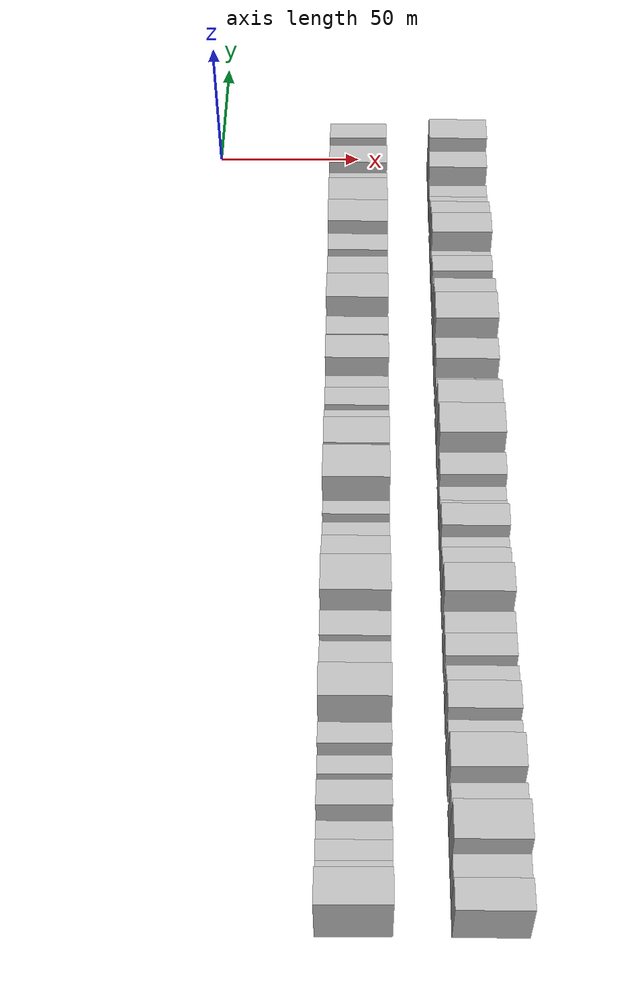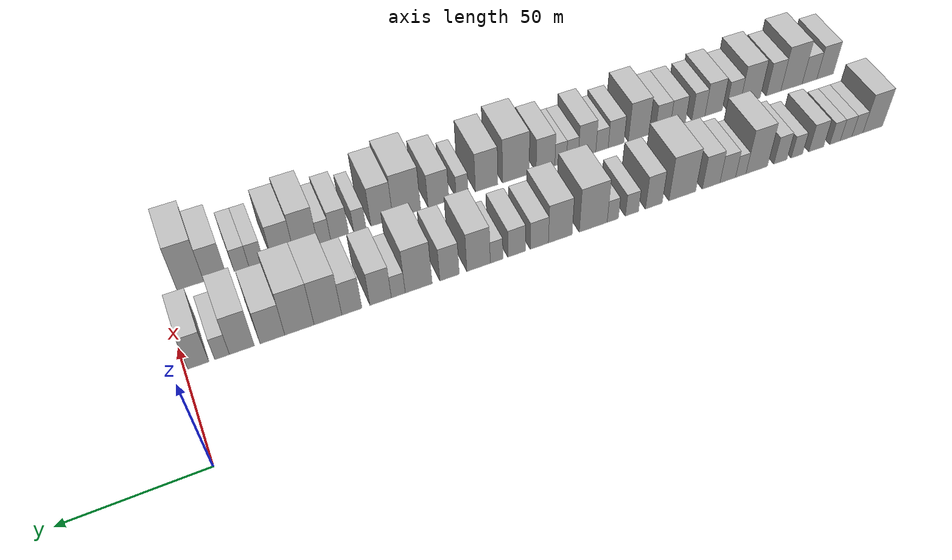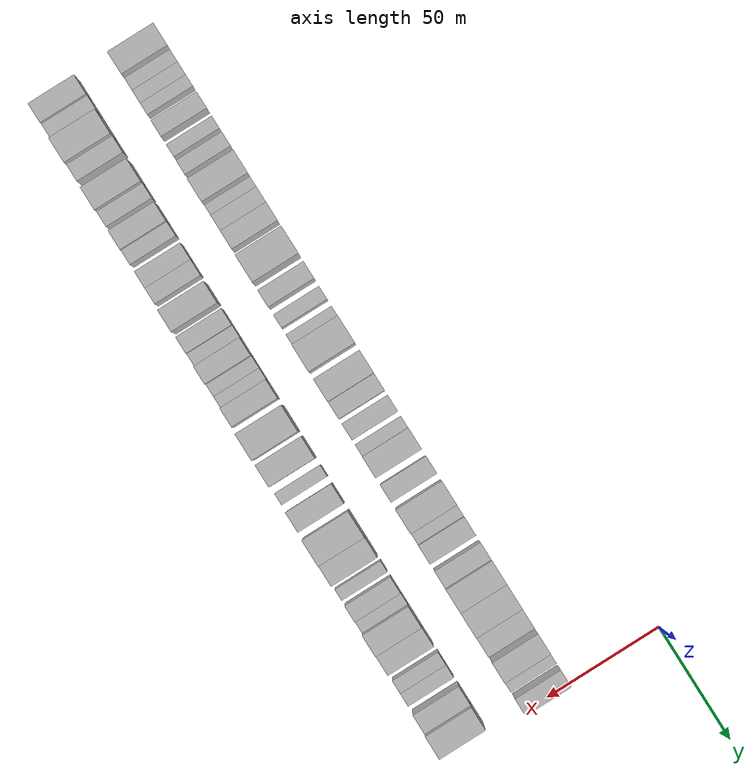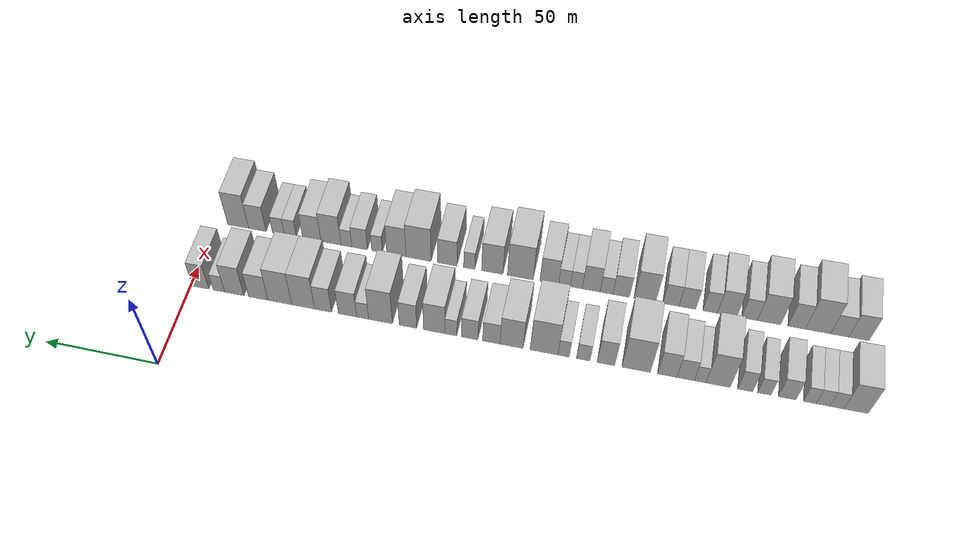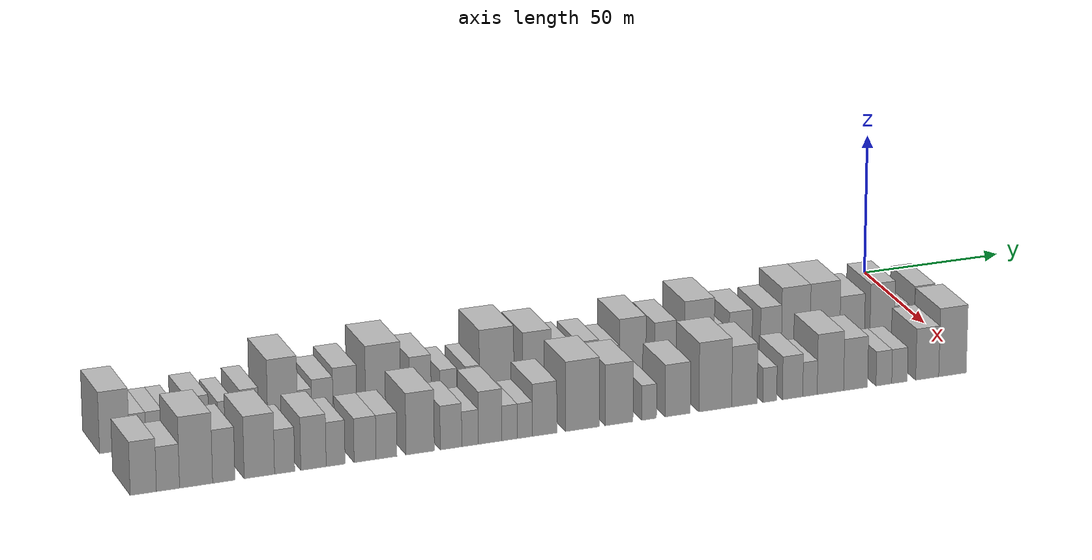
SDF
<sdf version="1.6">
 <world name="default">
  <model name="building_1">
   <static>1</static>
   <pose>50.0000 -285.1120 0 0.000000 0.000000 0.000000</pose>
   <link name="link">
    <pose>0 0 10.50 0 0 0</pose>
    <collision name="collision"><geometry><box><size>20.0000 9.7760 21.0000</size></box></geometry></collision>
    <visual name="visual">
     <cast_shadows>0</cast_shadows>
     <geometry><box><size>20.0000 9.7760 21.0000</size></box></geometry>
     <material>
      <script>
       <uri>model://HANNAS_wall/materials/scripts</uri>
       <uri>model://HANNAS_wall/materials/textures</uri>
       <name>vrc/HANNAS_wall</name>
      </script>
     </material>
    </visual>
   </link>
  </model>
  <model name="building_2">
   <static>1</static>
   <pose>50.0000 -277.5071 0 0.000000 0.000000 0.000000</pose>
   <link name="link">
    <pose>0 0 6.00 0 0 0</pose>
    <collision name="collision"><geometry><box><size>20.0000 5.4339 12.0000</size></box></geometry></collision>
    <visual name="visual">
     <cast_shadows>0</cast_shadows>
     <geometry><box><size>20.0000 5.4339 12.0000</size></box></geometry>
     <material>
      <script>
       <uri>model://HANNAS_wall/materials/scripts</uri>
       <uri>model://HANNAS_wall/materials/textures</uri>
       <name>vrc/HANNAS_wall</name>
      </script>
     </material>
    </visual>
   </link>
  </model>
  <model name="building_3">
   <static>1</static>
   <pose>50.0000 -271.9558 0 0.000000 0.000000 0.000000</pose>
   <link name="link">
    <pose>0 0 6.00 0 0 0</pose>
    <collision name="collision"><geometry><box><size>20.0000 5.6687 12.0000</size></box></geometry></collision>
    <visual name="visual">
     <cast_shadows>0</cast_shadows>
     <geometry><box><size>20.0000 5.6687 12.0000</size></box></geometry>
     <material>
      <script>
       <uri>model://HANNAS_wall/materials/scripts</uri>
       <uri>model://HANNAS_wall/materials/textures</uri>
       <name>vrc/HANNAS_wall</name>
      </script>
     </material>
    </visual>
   </link>
  </model>
  <model name="building_4">
   <static>1</static>
   <pose>50.0000 -266.5806 0 0.000000 0.000000 0.000000</pose>
   <link name="link">
    <pose>0 0 6.00 0 0 0</pose>
    <collision name="collision"><geometry><box><size>20.0000 5.0816 12.0000</size></box></geometry></collision>
    <visual name="visual">
     <cast_shadows>0</cast_shadows>
     <geometry><box><size>20.0000 5.0816 12.0000</size></box></geometry>
     <material>
      <script>
       <uri>model://HANNAS_wall/materials/scripts</uri>
       <uri>model://HANNAS_wall/materials/textures</uri>
       <name>vrc/HANNAS_wall</name>
      </script>
     </material>
    </visual>
   </link>
  </model>
  <model name="building_5">
   <static>1</static>
   <pose>50.0000 -257.4711 0 0.000000 0.000000 0.000000</pose>
   <link name="link">
    <pose>0 0 7.50 0 0 0</pose>
    <collision name="collision"><geometry><box><size>20.0000 7.1374 15.0000</size></box></geometry></collision>
    <visual name="visual">
     <cast_shadows>0</cast_shadows>
     <geometry><box><size>20.0000 7.1374 15.0000</size></box></geometry>
     <material>
      <script>
       <uri>model://HANNAS_wall/materials/scripts</uri>
       <uri>model://HANNAS_wall/materials/textures</uri>
       <name>vrc/HANNAS_wall</name>
      </script>
     </material>
    </visual>
   </link>
  </model>
  <model name="building_6">
   <static>1</static>
   <pose>50.0000 -248.1935 0 0.000000 0.000000 0.000000</pose>
   <link name="link">
    <pose>0 0 6.00 0 0 0</pose>
    <collision name="collision"><geometry><box><size>20.0000 5.4177 12.0000</size></box></geometry></collision>
    <visual name="visual">
     <cast_shadows>0</cast_shadows>
     <geometry><box><size>20.0000 5.4177 12.0000</size></box></geometry>
     <material>
      <script>
       <uri>model://HANNAS_wall/materials/scripts</uri>
       <uri>model://HANNAS_wall/materials/textures</uri>
       <name>vrc/HANNAS_wall</name>
      </script>
     </material>
    </visual>
   </link>
  </model>
  <model name="building_7">
   <static>1</static>
   <pose>50.0000 -240.3888 0 0.000000 0.000000 0.000000</pose>
   <link name="link">
    <pose>0 0 7.50 0 0 0</pose>
    <collision name="collision"><geometry><box><size>20.0000 6.1917 15.0000</size></box></geometry></collision>
    <visual name="visual">
     <cast_shadows>0</cast_shadows>
     <geometry><box><size>20.0000 6.1917 15.0000</size></box></geometry>
     <material>
      <script>
       <uri>model://HANNAS_wall/materials/scripts</uri>
       <uri>model://HANNAS_wall/materials/textures</uri>
       <name>vrc/HANNAS_wall</name>
      </script>
     </material>
    </visual>
   </link>
  </model>
  <model name="building_8">
   <static>1</static>
   <pose>50.0000 -229.2782 0 0.000000 0.000000 0.000000</pose>
   <link name="link">
    <pose>0 0 12.00 0 0 0</pose>
    <collision name="collision"><geometry><box><size>20.0000 10.0295 24.0000</size></box></geometry></collision>
    <visual name="visual">
     <cast_shadows>0</cast_shadows>
     <geometry><box><size>20.0000 10.0295 24.0000</size></box></geometry>
     <material>
      <script>
       <uri>model://HANNAS_wall/materials/scripts</uri>
       <uri>model://HANNAS_wall/materials/textures</uri>
       <name>vrc/HANNAS_wall</name>
      </script>
     </material>
    </visual>
   </link>
  </model>
  <model name="building_9">
   <static>1</static>
   <pose>50.0000 -221.8619 0 0.000000 0.000000 0.000000</pose>
   <link name="link">
    <pose>0 0 6.00 0 0 0</pose>
    <collision name="collision"><geometry><box><size>20.0000 4.8031 12.0000</size></box></geometry></collision>
    <visual name="visual">
     <cast_shadows>0</cast_shadows>
     <geometry><box><size>20.0000 4.8031 12.0000</size></box></geometry>
     <material>
      <script>
       <uri>model://HANNAS_wall/materials/scripts</uri>
       <uri>model://HANNAS_wall/materials/textures</uri>
       <name>vrc/HANNAS_wall</name>
      </script>
     </material>
    </visual>
   </link>
  </model>
  <model name="building_10">
   <static>1</static>
   <pose>50.0000 -215.8952 0 0.000000 0.000000 0.000000</pose>
   <link name="link">
    <pose>0 0 7.50 0 0 0</pose>
    <collision name="collision"><geometry><box><size>20.0000 7.1303 15.0000</size></box></geometry></collision>
    <visual name="visual">
     <cast_shadows>0</cast_shadows>
     <geometry><box><size>20.0000 7.1303 15.0000</size></box></geometry>
     <material>
      <script>
       <uri>model://HANNAS_wall/materials/scripts</uri>
       <uri>model://HANNAS_wall/materials/textures</uri>
       <name>vrc/HANNAS_wall</name>
      </script>
     </material>
    </visual>
   </link>
  </model>
  <model name="building_11">
   <static>1</static>
   <pose>50.0000 -208.3182 0 0.000000 0.000000 0.000000</pose>
   <link name="link">
    <pose>0 0 9.00 0 0 0</pose>
    <collision name="collision"><geometry><box><size>20.0000 8.0237 18.0000</size></box></geometry></collision>
    <visual name="visual">
     <cast_shadows>0</cast_shadows>
     <geometry><box><size>20.0000 8.0237 18.0000</size></box></geometry>
     <material>
      <script>
       <uri>model://HANNAS_wall/materials/scripts</uri>
       <uri>model://HANNAS_wall/materials/textures</uri>
       <name>vrc/HANNAS_wall</name>
      </script>
     </material>
    </visual>
   </link>
  </model>
  <model name="building_12">
   <static>1</static>
   <pose>50.0000 -195.3525 0 0.000000 0.000000 0.000000</pose>
   <link name="link">
    <pose>0 0 12.00 0 0 0</pose>
    <collision name="collision"><geometry><box><size>20.0000 11.9077 24.0000</size></box></geometry></collision>
    <visual name="visual">
     <cast_shadows>0</cast_shadows>
     <geometry><box><size>20.0000 11.9077 24.0000</size></box></geometry>
     <material>
      <script>
       <uri>model://HANNAS_wall/materials/scripts</uri>
       <uri>model://HANNAS_wall/materials/textures</uri>
       <name>vrc/HANNAS_wall</name>
      </script>
     </material>
    </visual>
   </link>
  </model>
  <model name="building_13">
   <static>1</static>
   <pose>50.0000 -182.7060 0 0.000000 0.000000 0.000000</pose>
   <link name="link">
    <pose>0 0 9.00 0 0 0</pose>
    <collision name="collision"><geometry><box><size>20.0000 7.3852 18.0000</size></box></geometry></collision>
    <visual name="visual">
     <cast_shadows>0</cast_shadows>
     <geometry><box><size>20.0000 7.3852 18.0000</size></box></geometry>
     <material>
      <script>
       <uri>model://HANNAS_wall/materials/scripts</uri>
       <uri>model://HANNAS_wall/materials/textures</uri>
       <name>vrc/HANNAS_wall</name>
      </script>
     </material>
    </visual>
   </link>
  </model>
  <model name="building_14">
   <static>1</static>
   <pose>50.0000 -173.1406 0 0.000000 0.000000 0.000000</pose>
   <link name="link">
    <pose>0 0 6.00 0 0 0</pose>
    <collision name="collision"><geometry><box><size>20.0000 5.7456 12.0000</size></box></geometry></collision>
    <visual name="visual">
     <cast_shadows>0</cast_shadows>
     <geometry><box><size>20.0000 5.7456 12.0000</size></box></geometry>
     <material>
      <script>
       <uri>model://HANNAS_wall/materials/scripts</uri>
       <uri>model://HANNAS_wall/materials/textures</uri>
       <name>vrc/HANNAS_wall</name>
      </script>
     </material>
    </visual>
   </link>
  </model>
  <model name="building_15">
   <static>1</static>
   <pose>50.0000 -164.8532 0 0.000000 0.000000 0.000000</pose>
   <link name="link">
    <pose>0 0 6.00 0 0 0</pose>
    <collision name="collision"><geometry><box><size>20.0000 4.8292 12.0000</size></box></geometry></collision>
    <visual name="visual">
     <cast_shadows>0</cast_shadows>
     <geometry><box><size>20.0000 4.8292 12.0000</size></box></geometry>
     <material>
      <script>
       <uri>model://HANNAS_wall/materials/scripts</uri>
       <uri>model://HANNAS_wall/materials/textures</uri>
       <name>vrc/HANNAS_wall</name>
      </script>
     </material>
    </visual>
   </link>
  </model>
  <model name="building_16">
   <static>1</static>
   <pose>50.0000 -156.5043 0 0.000000 0.000000 0.000000</pose>
   <link name="link">
    <pose>0 0 12.00 0 0 0</pose>
    <collision name="collision"><geometry><box><size>20.0000 11.8687 24.0000</size></box></geometry></collision>
    <visual name="visual">
     <cast_shadows>0</cast_shadows>
     <geometry><box><size>20.0000 11.8687 24.0000</size></box></geometry>
     <material>
      <script>
       <uri>model://HANNAS_wall/materials/scripts</uri>
       <uri>model://HANNAS_wall/materials/textures</uri>
       <name>vrc/HANNAS_wall</name>
      </script>
     </material>
    </visual>
   </link>
  </model>
  <model name="building_17">
   <static>1</static>
   <pose>50.0000 -142.6016 0 0.000000 0.000000 0.000000</pose>
   <link name="link">
    <pose>0 0 10.50 0 0 0</pose>
    <collision name="collision"><geometry><box><size>20.0000 9.9367 21.0000</size></box></geometry></collision>
    <visual name="visual">
     <cast_shadows>0</cast_shadows>
     <geometry><box><size>20.0000 9.9367 21.0000</size></box></geometry>
     <material>
      <script>
       <uri>model://HANNAS_wall/materials/scripts</uri>
       <uri>model://HANNAS_wall/materials/textures</uri>
       <name>vrc/HANNAS_wall</name>
      </script>
     </material>
    </visual>
   </link>
  </model>
  <model name="building_18">
   <static>1</static>
   <pose>50.0000 -133.8957 0 0.000000 0.000000 0.000000</pose>
   <link name="link">
    <pose>0 0 7.50 0 0 0</pose>
    <collision name="collision"><geometry><box><size>20.0000 7.4753 15.0000</size></box></geometry></collision>
    <visual name="visual">
     <cast_shadows>0</cast_shadows>
     <geometry><box><size>20.0000 7.4753 15.0000</size></box></geometry>
     <material>
      <script>
       <uri>model://HANNAS_wall/materials/scripts</uri>
       <uri>model://HANNAS_wall/materials/textures</uri>
       <name>vrc/HANNAS_wall</name>
      </script>
     </material>
    </visual>
   </link>
  </model>
  <model name="building_19">
   <static>1</static>
   <pose>50.0000 -124.5786 0 0.000000 0.000000 0.000000</pose>
   <link name="link">
    <pose>0 0 7.50 0 0 0</pose>
    <collision name="collision"><geometry><box><size>20.0000 7.1588 15.0000</size></box></geometry></collision>
    <visual name="visual">
     <cast_shadows>0</cast_shadows>
     <geometry><box><size>20.0000 7.1588 15.0000</size></box></geometry>
     <material>
      <script>
       <uri>model://HANNAS_wall/materials/scripts</uri>
       <uri>model://HANNAS_wall/materials/textures</uri>
       <name>vrc/HANNAS_wall</name>
      </script>
     </material>
    </visual>
   </link>
  </model>
  <model name="building_20">
   <static>1</static>
   <pose>50.0000 -116.4364 0 0.000000 0.000000 0.000000</pose>
   <link name="link">
    <pose>0 0 6.00 0 0 0</pose>
    <collision name="collision"><geometry><box><size>20.0000 5.1256 12.0000</size></box></geometry></collision>
    <visual name="visual">
     <cast_shadows>0</cast_shadows>
     <geometry><box><size>20.0000 5.1256 12.0000</size></box></geometry>
     <material>
      <script>
       <uri>model://HANNAS_wall/materials/scripts</uri>
       <uri>model://HANNAS_wall/materials/textures</uri>
       <name>vrc/HANNAS_wall</name>
      </script>
     </material>
    </visual>
   </link>
  </model>
  <model name="building_21">
   <static>1</static>
   <pose>50.0000 -109.1914 0 0.000000 0.000000 0.000000</pose>
   <link name="link">
    <pose>0 0 10.50 0 0 0</pose>
    <collision name="collision"><geometry><box><size>20.0000 9.3645 21.0000</size></box></geometry></collision>
    <visual name="visual">
     <cast_shadows>0</cast_shadows>
     <geometry><box><size>20.0000 9.3645 21.0000</size></box></geometry>
     <material>
      <script>
       <uri>model://HANNAS_wall/materials/scripts</uri>
       <uri>model://HANNAS_wall/materials/textures</uri>
       <name>vrc/HANNAS_wall</name>
      </script>
     </material>
    </visual>
   </link>
  </model>
  <model name="building_22">
   <static>1</static>
   <pose>50.0000 -97.6851 0 0.000000 0.000000 0.000000</pose>
   <link name="link">
    <pose>0 0 9.00 0 0 0</pose>
    <collision name="collision"><geometry><box><size>20.0000 7.6480 18.0000</size></box></geometry></collision>
    <visual name="visual">
     <cast_shadows>0</cast_shadows>
     <geometry><box><size>20.0000 7.6480 18.0000</size></box></geometry>
     <material>
      <script>
       <uri>model://HANNAS_wall/materials/scripts</uri>
       <uri>model://HANNAS_wall/materials/textures</uri>
       <name>vrc/HANNAS_wall</name>
      </script>
     </material>
    </visual>
   </link>
  </model>
  <model name="building_23">
   <static>1</static>
   <pose>50.0000 -85.6363 0 0.000000 0.000000 0.000000</pose>
   <link name="link">
    <pose>0 0 12.00 0 0 0</pose>
    <collision name="collision"><geometry><box><size>20.0000 10.4497 24.0000</size></box></geometry></collision>
    <visual name="visual">
     <cast_shadows>0</cast_shadows>
     <geometry><box><size>20.0000 10.4497 24.0000</size></box></geometry>
     <material>
      <script>
       <uri>model://HANNAS_wall/materials/scripts</uri>
       <uri>model://HANNAS_wall/materials/textures</uri>
       <name>vrc/HANNAS_wall</name>
      </script>
     </material>
    </visual>
   </link>
  </model>
  <model name="building_24">
   <static>1</static>
   <pose>50.0000 -77.7396 0 0.000000 0.000000 0.000000</pose>
   <link name="link">
    <pose>0 0 6.00 0 0 0</pose>
    <collision name="collision"><geometry><box><size>20.0000 5.3436 12.0000</size></box></geometry></collision>
    <visual name="visual">
     <cast_shadows>0</cast_shadows>
     <geometry><box><size>20.0000 5.3436 12.0000</size></box></geometry>
     <material>
      <script>
       <uri>model://HANNAS_wall/materials/scripts</uri>
       <uri>model://HANNAS_wall/materials/textures</uri>
       <name>vrc/HANNAS_wall</name>
      </script>
     </material>
    </visual>
   </link>
  </model>
  <model name="building_25">
   <static>1</static>
   <pose>50.0000 -70.9836 0 0.000000 0.000000 0.000000</pose>
   <link name="link">
    <pose>0 0 9.00 0 0 0</pose>
    <collision name="collision"><geometry><box><size>20.0000 8.1685 18.0000</size></box></geometry></collision>
    <visual name="visual">
     <cast_shadows>0</cast_shadows>
     <geometry><box><size>20.0000 8.1685 18.0000</size></box></geometry>
     <material>
      <script>
       <uri>model://HANNAS_wall/materials/scripts</uri>
       <uri>model://HANNAS_wall/materials/textures</uri>
       <name>vrc/HANNAS_wall</name>
      </script>
     </material>
    </visual>
   </link>
  </model>
  <model name="building_26">
   <static>1</static>
   <pose>50.0000 -60.1290 0 0.000000 0.000000 0.000000</pose>
   <link name="link">
    <pose>0 0 9.00 0 0 0</pose>
    <collision name="collision"><geometry><box><size>20.0000 7.5406 18.0000</size></box></geometry></collision>
    <visual name="visual">
     <cast_shadows>0</cast_shadows>
     <geometry><box><size>20.0000 7.5406 18.0000</size></box></geometry>
     <material>
      <script>
       <uri>model://HANNAS_wall/materials/scripts</uri>
       <uri>model://HANNAS_wall/materials/textures</uri>
       <name>vrc/HANNAS_wall</name>
      </script>
     </material>
    </visual>
   </link>
  </model>
  <model name="building_27">
   <static>1</static>
   <pose>50.0000 -51.2133 0 0.000000 0.000000 0.000000</pose>
   <link name="link">
    <pose>0 0 12.00 0 0 0</pose>
    <collision name="collision"><geometry><box><size>20.0000 10.2908 24.0000</size></box></geometry></collision>
    <visual name="visual">
     <cast_shadows>0</cast_shadows>
     <geometry><box><size>20.0000 10.2908 24.0000</size></box></geometry>
     <material>
      <script>
       <uri>model://HANNAS_wall/materials/scripts</uri>
       <uri>model://HANNAS_wall/materials/textures</uri>
       <name>vrc/HANNAS_wall</name>
      </script>
     </material>
    </visual>
   </link>
  </model>
  <model name="building_28">
   <static>1</static>
   <pose>50.0000 -40.7149 0 0.000000 0.000000 0.000000</pose>
   <link name="link">
    <pose>0 0 12.00 0 0 0</pose>
    <collision name="collision"><geometry><box><size>20.0000 10.7061 24.0000</size></box></geometry></collision>
    <visual name="visual">
     <cast_shadows>0</cast_shadows>
     <geometry><box><size>20.0000 10.7061 24.0000</size></box></geometry>
     <material>
      <script>
       <uri>model://HANNAS_wall/materials/scripts</uri>
       <uri>model://HANNAS_wall/materials/textures</uri>
       <name>vrc/HANNAS_wall</name>
      </script>
     </material>
    </visual>
   </link>
  </model>
  <model name="building_29">
   <static>1</static>
   <pose>50.0000 -30.9056 0 0.000000 0.000000 0.000000</pose>
   <link name="link">
    <pose>0 0 9.00 0 0 0</pose>
    <collision name="collision"><geometry><box><size>20.0000 8.9124 18.0000</size></box></geometry></collision>
    <visual name="visual">
     <cast_shadows>0</cast_shadows>
     <geometry><box><size>20.0000 8.9124 18.0000</size></box></geometry>
     <material>
      <script>
       <uri>model://HANNAS_wall/materials/scripts</uri>
       <uri>model://HANNAS_wall/materials/textures</uri>
       <name>vrc/HANNAS_wall</name>
      </script>
     </material>
    </visual>
   </link>
  </model>
  <model name="building_30">
   <static>1</static>
   <pose>50.0000 -20.0136 0 0.000000 0.000000 0.000000</pose>
   <link name="link">
    <pose>0 0 10.50 0 0 0</pose>
    <collision name="collision"><geometry><box><size>20.0000 8.8717 21.0000</size></box></geometry></collision>
    <visual name="visual">
     <cast_shadows>0</cast_shadows>
     <geometry><box><size>20.0000 8.8717 21.0000</size></box></geometry>
     <material>
      <script>
       <uri>model://HANNAS_wall/materials/scripts</uri>
       <uri>model://HANNAS_wall/materials/textures</uri>
       <name>vrc/HANNAS_wall</name>
      </script>
     </material>
    </visual>
   </link>
  </model>
  <model name="building_31">
   <static>1</static>
   <pose>50.0000 -12.9864 0 0.000000 0.000000 0.000000</pose>
   <link name="link">
    <pose>0 0 6.00 0 0 0</pose>
    <collision name="collision"><geometry><box><size>20.0000 5.1826 12.0000</size></box></geometry></collision>
    <visual name="visual">
     <cast_shadows>0</cast_shadows>
     <geometry><box><size>20.0000 5.1826 12.0000</size></box></geometry>
     <material>
      <script>
       <uri>model://HANNAS_wall/materials/scripts</uri>
       <uri>model://HANNAS_wall/materials/textures</uri>
       <name>vrc/HANNAS_wall</name>
      </script>
     </material>
    </visual>
   </link>
  </model>
  <model name="building_32">
   <static>1</static>
   <pose>50.0000 -4.6984 0 0.000000 0.000000 0.000000</pose>
   <link name="link">
    <pose>0 0 9.00 0 0 0</pose>
    <collision name="collision"><geometry><box><size>20.0000 7.3933 18.0000</size></box></geometry></collision>
    <visual name="visual">
     <cast_shadows>0</cast_shadows>
     <geometry><box><size>20.0000 7.3933 18.0000</size></box></geometry>
     <material>
      <script>
       <uri>model://HANNAS_wall/materials/scripts</uri>
       <uri>model://HANNAS_wall/materials/textures</uri>
       <name>vrc/HANNAS_wall</name>
      </script>
     </material>
    </visual>
   </link>
  </model>
  <model name="building_62">
   <static>1</static>
   <pose>85.0000 -285.7723 0 0.000000 0.000000 0.000000</pose>
   <link name="link">
    <pose>0 0 9.00 0 0 0</pose>
    <collision name="collision"><geometry><box><size>20.0000 8.4553 18.0000</size></box></geometry></collision>
    <visual name="visual">
     <cast_shadows>0</cast_shadows>
     <geometry><box><size>20.0000 8.4553 18.0000</size></box></geometry>
     <material>
      <script>
       <uri>model://HANNAS_wall/materials/scripts</uri>
       <uri>model://HANNAS_wall/materials/textures</uri>
       <name>vrc/HANNAS_wall</name>
      </script>
     </material>
    </visual>
   </link>
  </model>
  <model name="building_63">
   <static>1</static>
   <pose>85.0000 -277.8021 0 0.000000 0.000000 0.000000</pose>
   <link name="link">
    <pose>0 0 7.50 0 0 0</pose>
    <collision name="collision"><geometry><box><size>20.0000 7.4852 15.0000</size></box></geometry></collision>
    <visual name="visual">
     <cast_shadows>0</cast_shadows>
     <geometry><box><size>20.0000 7.4852 15.0000</size></box></geometry>
     <material>
      <script>
       <uri>model://HANNAS_wall/materials/scripts</uri>
       <uri>model://HANNAS_wall/materials/textures</uri>
       <name>vrc/HANNAS_wall</name>
      </script>
     </material>
    </visual>
   </link>
  </model>
  <model name="building_64">
   <static>1</static>
   <pose>85.0000 -268.6923 0 0.000000 0.000000 0.000000</pose>
   <link name="link">
    <pose>0 0 12.00 0 0 0</pose>
    <collision name="collision"><geometry><box><size>20.0000 10.7342 24.0000</size></box></geometry></collision>
    <visual name="visual">
     <cast_shadows>0</cast_shadows>
     <geometry><box><size>20.0000 10.7342 24.0000</size></box></geometry>
     <material>
      <script>
       <uri>model://HANNAS_wall/materials/scripts</uri>
       <uri>model://HANNAS_wall/materials/textures</uri>
       <name>vrc/HANNAS_wall</name>
      </script>
     </material>
    </visual>
   </link>
  </model>
  <model name="building_65">
   <static>1</static>
   <pose>85.0000 -259.6766 0 0.000000 0.000000 0.000000</pose>
   <link name="link">
    <pose>0 0 9.00 0 0 0</pose>
    <collision name="collision"><geometry><box><size>20.0000 7.2972 18.0000</size></box></geometry></collision>
    <visual name="visual">
     <cast_shadows>0</cast_shadows>
     <geometry><box><size>20.0000 7.2972 18.0000</size></box></geometry>
     <material>
      <script>
       <uri>model://HANNAS_wall/materials/scripts</uri>
       <uri>model://HANNAS_wall/materials/textures</uri>
       <name>vrc/HANNAS_wall</name>
      </script>
     </material>
    </visual>
   </link>
  </model>
  <model name="building_66">
   <static>1</static>
   <pose>85.0000 -248.0553 0 0.000000 0.000000 0.000000</pose>
   <link name="link">
    <pose>0 0 10.50 0 0 0</pose>
    <collision name="collision"><geometry><box><size>20.0000 9.9454 21.0000</size></box></geometry></collision>
    <visual name="visual">
     <cast_shadows>0</cast_shadows>
     <geometry><box><size>20.0000 9.9454 21.0000</size></box></geometry>
     <material>
      <script>
       <uri>model://HANNAS_wall/materials/scripts</uri>
       <uri>model://HANNAS_wall/materials/textures</uri>
       <name>vrc/HANNAS_wall</name>
      </script>
     </material>
    </visual>
   </link>
  </model>
  <model name="building_67">
   <static>1</static>
   <pose>85.0000 -239.7674 0 0.000000 0.000000 0.000000</pose>
   <link name="link">
    <pose>0 0 7.50 0 0 0</pose>
    <collision name="collision"><geometry><box><size>20.0000 6.6302 15.0000</size></box></geometry></collision>
    <visual name="visual">
     <cast_shadows>0</cast_shadows>
     <geometry><box><size>20.0000 6.6302 15.0000</size></box></geometry>
     <material>
      <script>
       <uri>model://HANNAS_wall/materials/scripts</uri>
       <uri>model://HANNAS_wall/materials/textures</uri>
       <name>vrc/HANNAS_wall</name>
      </script>
     </material>
    </visual>
   </link>
  </model>
  <model name="building_68">
   <static>1</static>
   <pose>85.0000 -230.2664 0 0.000000 0.000000 0.000000</pose>
   <link name="link">
    <pose>0 0 9.00 0 0 0</pose>
    <collision name="collision"><geometry><box><size>20.0000 8.3719 18.0000</size></box></geometry></collision>
    <visual name="visual">
     <cast_shadows>0</cast_shadows>
     <geometry><box><size>20.0000 8.3719 18.0000</size></box></geometry>
     <material>
      <script>
       <uri>model://HANNAS_wall/materials/scripts</uri>
       <uri>model://HANNAS_wall/materials/textures</uri>
       <name>vrc/HANNAS_wall</name>
      </script>
     </material>
    </visual>
   </link>
  </model>
  <model name="building_69">
   <static>1</static>
   <pose>85.0000 -222.9551 0 0.000000 0.000000 0.000000</pose>
   <link name="link">
    <pose>0 0 7.50 0 0 0</pose>
    <collision name="collision"><geometry><box><size>20.0000 6.2507 15.0000</size></box></geometry></collision>
    <visual name="visual">
     <cast_shadows>0</cast_shadows>
     <geometry><box><size>20.0000 6.2507 15.0000</size></box></geometry>
     <material>
      <script>
       <uri>model://HANNAS_wall/materials/scripts</uri>
       <uri>model://HANNAS_wall/materials/textures</uri>
       <name>vrc/HANNAS_wall</name>
      </script>
     </material>
    </visual>
   </link>
  </model>
  <model name="building_70">
   <static>1</static>
   <pose>85.0000 -213.1836 0 0.000000 0.000000 0.000000</pose>
   <link name="link">
    <pose>0 0 7.50 0 0 0</pose>
    <collision name="collision"><geometry><box><size>20.0000 7.2921 15.0000</size></box></geometry></collision>
    <visual name="visual">
     <cast_shadows>0</cast_shadows>
     <geometry><box><size>20.0000 7.2921 15.0000</size></box></geometry>
     <material>
      <script>
       <uri>model://HANNAS_wall/materials/scripts</uri>
       <uri>model://HANNAS_wall/materials/textures</uri>
       <name>vrc/HANNAS_wall</name>
      </script>
     </material>
    </visual>
   </link>
  </model>
  <model name="building_71">
   <static>1</static>
   <pose>85.0000 -206.0571 0 0.000000 0.000000 0.000000</pose>
   <link name="link">
    <pose>0 0 7.50 0 0 0</pose>
    <collision name="collision"><geometry><box><size>20.0000 6.9610 15.0000</size></box></geometry></collision>
    <visual name="visual">
     <cast_shadows>0</cast_shadows>
     <geometry><box><size>20.0000 6.9610 15.0000</size></box></geometry>
     <material>
      <script>
       <uri>model://HANNAS_wall/materials/scripts</uri>
       <uri>model://HANNAS_wall/materials/textures</uri>
       <name>vrc/HANNAS_wall</name>
      </script>
     </material>
    </visual>
   </link>
  </model>
  <model name="building_72">
   <static>1</static>
   <pose>85.0000 -194.8397 0 0.000000 0.000000 0.000000</pose>
   <link name="link">
    <pose>0 0 10.50 0 0 0</pose>
    <collision name="collision"><geometry><box><size>20.0000 9.4738 21.0000</size></box></geometry></collision>
    <visual name="visual">
     <cast_shadows>0</cast_shadows>
     <geometry><box><size>20.0000 9.4738 21.0000</size></box></geometry>
     <material>
      <script>
       <uri>model://HANNAS_wall/materials/scripts</uri>
       <uri>model://HANNAS_wall/materials/textures</uri>
       <name>vrc/HANNAS_wall</name>
      </script>
     </material>
    </visual>
   </link>
  </model>
  <model name="building_73">
   <static>1</static>
   <pose>85.0000 -184.4912 0 0.000000 0.000000 0.000000</pose>
   <link name="link">
    <pose>0 0 7.50 0 0 0</pose>
    <collision name="collision"><geometry><box><size>20.0000 7.2231 15.0000</size></box></geometry></collision>
    <visual name="visual">
     <cast_shadows>0</cast_shadows>
     <geometry><box><size>20.0000 7.2231 15.0000</size></box></geometry>
     <material>
      <script>
       <uri>model://HANNAS_wall/materials/scripts</uri>
       <uri>model://HANNAS_wall/materials/textures</uri>
       <name>vrc/HANNAS_wall</name>
      </script>
     </material>
    </visual>
   </link>
  </model>
  <model name="building_74">
   <static>1</static>
   <pose>85.0000 -178.0739 0 0.000000 0.000000 0.000000</pose>
   <link name="link">
    <pose>0 0 6.00 0 0 0</pose>
    <collision name="collision"><geometry><box><size>20.0000 5.6116 12.0000</size></box></geometry></collision>
    <visual name="visual">
     <cast_shadows>0</cast_shadows>
     <geometry><box><size>20.0000 5.6116 12.0000</size></box></geometry>
     <material>
      <script>
       <uri>model://HANNAS_wall/materials/scripts</uri>
       <uri>model://HANNAS_wall/materials/textures</uri>
       <name>vrc/HANNAS_wall</name>
      </script>
     </material>
    </visual>
   </link>
  </model>
  <model name="building_75">
   <static>1</static>
   <pose>85.0000 -171.3238 0 0.000000 0.000000 0.000000</pose>
   <link name="link">
    <pose>0 0 9.00 0 0 0</pose>
    <collision name="collision"><geometry><box><size>20.0000 7.8886 18.0000</size></box></geometry></collision>
    <visual name="visual">
     <cast_shadows>0</cast_shadows>
     <geometry><box><size>20.0000 7.8886 18.0000</size></box></geometry>
     <material>
      <script>
       <uri>model://HANNAS_wall/materials/scripts</uri>
       <uri>model://HANNAS_wall/materials/textures</uri>
       <name>vrc/HANNAS_wall</name>
      </script>
     </material>
    </visual>
   </link>
  </model>
  <model name="building_76">
   <static>1</static>
   <pose>85.0000 -164.7519 0 0.000000 0.000000 0.000000</pose>
   <link name="link">
    <pose>0 0 6.00 0 0 0</pose>
    <collision name="collision"><geometry><box><size>20.0000 5.2552 12.0000</size></box></geometry></collision>
    <visual name="visual">
     <cast_shadows>0</cast_shadows>
     <geometry><box><size>20.0000 5.2552 12.0000</size></box></geometry>
     <material>
      <script>
       <uri>model://HANNAS_wall/materials/scripts</uri>
       <uri>model://HANNAS_wall/materials/textures</uri>
       <name>vrc/HANNAS_wall</name>
      </script>
     </material>
    </visual>
   </link>
  </model>
  <model name="building_77">
   <static>1</static>
   <pose>85.0000 -159.5501 0 0.000000 0.000000 0.000000</pose>
   <link name="link">
    <pose>0 0 6.00 0 0 0</pose>
    <collision name="collision"><geometry><box><size>20.0000 5.1485 12.0000</size></box></geometry></collision>
    <visual name="visual">
     <cast_shadows>0</cast_shadows>
     <geometry><box><size>20.0000 5.1485 12.0000</size></box></geometry>
     <material>
      <script>
       <uri>model://HANNAS_wall/materials/scripts</uri>
       <uri>model://HANNAS_wall/materials/textures</uri>
       <name>vrc/HANNAS_wall</name>
      </script>
     </material>
    </visual>
   </link>
  </model>
  <model name="building_78">
   <static>1</static>
   <pose>85.0000 -152.8423 0 0.000000 0.000000 0.000000</pose>
   <link name="link">
    <pose>0 0 9.00 0 0 0</pose>
    <collision name="collision"><geometry><box><size>20.0000 8.2669 18.0000</size></box></geometry></collision>
    <visual name="visual">
     <cast_shadows>0</cast_shadows>
     <geometry><box><size>20.0000 8.2669 18.0000</size></box></geometry>
     <material>
      <script>
       <uri>model://HANNAS_wall/materials/scripts</uri>
       <uri>model://HANNAS_wall/materials/textures</uri>
       <name>vrc/HANNAS_wall</name>
      </script>
     </material>
    </visual>
   </link>
  </model>
  <model name="building_79">
   <static>1</static>
   <pose>85.0000 -139.9457 0 0.000000 0.000000 0.000000</pose>
   <link name="link">
    <pose>0 0 12.00 0 0 0</pose>
    <collision name="collision"><geometry><box><size>20.0000 11.5263 24.0000</size></box></geometry></collision>
    <visual name="visual">
     <cast_shadows>0</cast_shadows>
     <geometry><box><size>20.0000 11.5263 24.0000</size></box></geometry>
     <material>
      <script>
       <uri>model://HANNAS_wall/materials/scripts</uri>
       <uri>model://HANNAS_wall/materials/textures</uri>
       <name>vrc/HANNAS_wall</name>
      </script>
     </material>
    </visual>
   </link>
  </model>
  <model name="building_80">
   <static>1</static>
   <pose>85.0000 -127.3923 0 0.000000 0.000000 0.000000</pose>
   <link name="link">
    <pose>0 0 10.50 0 0 0</pose>
    <collision name="collision"><geometry><box><size>20.0000 9.5805 21.0000</size></box></geometry></collision>
    <visual name="visual">
     <cast_shadows>0</cast_shadows>
     <geometry><box><size>20.0000 9.5805 21.0000</size></box></geometry>
     <material>
      <script>
       <uri>model://HANNAS_wall/materials/scripts</uri>
       <uri>model://HANNAS_wall/materials/textures</uri>
       <name>vrc/HANNAS_wall</name>
      </script>
     </material>
    </visual>
   </link>
  </model>
  <model name="building_81">
   <static>1</static>
   <pose>85.0000 -117.0538 0 0.000000 0.000000 0.000000</pose>
   <link name="link">
    <pose>0 0 6.00 0 0 0</pose>
    <collision name="collision"><geometry><box><size>20.0000 5.0965 12.0000</size></box></geometry></collision>
    <visual name="visual">
     <cast_shadows>0</cast_shadows>
     <geometry><box><size>20.0000 5.0965 12.0000</size></box></geometry>
     <material>
      <script>
       <uri>model://HANNAS_wall/materials/scripts</uri>
       <uri>model://HANNAS_wall/materials/textures</uri>
       <name>vrc/HANNAS_wall</name>
      </script>
     </material>
    </visual>
   </link>
  </model>
  <model name="building_82">
   <static>1</static>
   <pose>85.0000 -107.1457 0 0.000000 0.000000 0.000000</pose>
   <link name="link">
    <pose>0 0 9.00 0 0 0</pose>
    <collision name="collision"><geometry><box><size>20.0000 8.7197 18.0000</size></box></geometry></collision>
    <visual name="visual">
     <cast_shadows>0</cast_shadows>
     <geometry><box><size>20.0000 8.7197 18.0000</size></box></geometry>
     <material>
      <script>
       <uri>model://HANNAS_wall/materials/scripts</uri>
       <uri>model://HANNAS_wall/materials/textures</uri>
       <name>vrc/HANNAS_wall</name>
      </script>
     </material>
    </visual>
   </link>
  </model>
  <model name="building_83">
   <static>1</static>
   <pose>85.0000 -94.0847 0 0.000000 0.000000 0.000000</pose>
   <link name="link">
    <pose>0 0 12.00 0 0 0</pose>
    <collision name="collision"><geometry><box><size>20.0000 11.4023 24.0000</size></box></geometry></collision>
    <visual name="visual">
     <cast_shadows>0</cast_shadows>
     <geometry><box><size>20.0000 11.4023 24.0000</size></box></geometry>
     <material>
      <script>
       <uri>model://HANNAS_wall/materials/scripts</uri>
       <uri>model://HANNAS_wall/materials/textures</uri>
       <name>vrc/HANNAS_wall</name>
      </script>
     </material>
    </visual>
   </link>
  </model>
  <model name="building_84">
   <static>1</static>
   <pose>85.0000 -83.9442 0 0.000000 0.000000 0.000000</pose>
   <link name="link">
    <pose>0 0 10.50 0 0 0</pose>
    <collision name="collision"><geometry><box><size>20.0000 8.8787 21.0000</size></box></geometry></collision>
    <visual name="visual">
     <cast_shadows>0</cast_shadows>
     <geometry><box><size>20.0000 8.8787 21.0000</size></box></geometry>
     <material>
      <script>
       <uri>model://HANNAS_wall/materials/scripts</uri>
       <uri>model://HANNAS_wall/materials/textures</uri>
       <name>vrc/HANNAS_wall</name>
      </script>
     </material>
    </visual>
   </link>
  </model>
  <model name="building_85">
   <static>1</static>
   <pose>85.0000 -75.0683 0 0.000000 0.000000 0.000000</pose>
   <link name="link">
    <pose>0 0 6.00 0 0 0</pose>
    <collision name="collision"><geometry><box><size>20.0000 4.8733 12.0000</size></box></geometry></collision>
    <visual name="visual">
     <cast_shadows>0</cast_shadows>
     <geometry><box><size>20.0000 4.8733 12.0000</size></box></geometry>
     <material>
      <script>
       <uri>model://HANNAS_wall/materials/scripts</uri>
       <uri>model://HANNAS_wall/materials/textures</uri>
       <name>vrc/HANNAS_wall</name>
      </script>
     </material>
    </visual>
   </link>
  </model>
  <model name="building_86">
   <static>1</static>
   <pose>85.0000 -67.0498 0 0.000000 0.000000 0.000000</pose>
   <link name="link">
    <pose>0 0 7.50 0 0 0</pose>
    <collision name="collision"><geometry><box><size>20.0000 7.1636 15.0000</size></box></geometry></collision>
    <visual name="visual">
     <cast_shadows>0</cast_shadows>
     <geometry><box><size>20.0000 7.1636 15.0000</size></box></geometry>
     <material>
      <script>
       <uri>model://HANNAS_wall/materials/scripts</uri>
       <uri>model://HANNAS_wall/materials/textures</uri>
       <name>vrc/HANNAS_wall</name>
      </script>
     </material>
    </visual>
   </link>
  </model>
  <model name="building_87">
   <static>1</static>
   <pose>85.0000 -60.9274 0 0.000000 0.000000 0.000000</pose>
   <link name="link">
    <pose>0 0 6.00 0 0 0</pose>
    <collision name="collision"><geometry><box><size>20.0000 5.0812 12.0000</size></box></geometry></collision>
    <visual name="visual">
     <cast_shadows>0</cast_shadows>
     <geometry><box><size>20.0000 5.0812 12.0000</size></box></geometry>
     <material>
      <script>
       <uri>model://HANNAS_wall/materials/scripts</uri>
       <uri>model://HANNAS_wall/materials/textures</uri>
       <name>vrc/HANNAS_wall</name>
      </script>
     </material>
    </visual>
   </link>
  </model>
  <model name="building_88">
   <static>1</static>
   <pose>85.0000 -53.7125 0 0.000000 0.000000 0.000000</pose>
   <link name="link">
    <pose>0 0 10.50 0 0 0</pose>
    <collision name="collision"><geometry><box><size>20.0000 9.3487 21.0000</size></box></geometry></collision>
    <visual name="visual">
     <cast_shadows>0</cast_shadows>
     <geometry><box><size>20.0000 9.3487 21.0000</size></box></geometry>
     <material>
      <script>
       <uri>model://HANNAS_wall/materials/scripts</uri>
       <uri>model://HANNAS_wall/materials/textures</uri>
       <name>vrc/HANNAS_wall</name>
      </script>
     </material>
    </visual>
   </link>
  </model>
  <model name="building_89">
   <static>1</static>
   <pose>85.0000 -44.7870 0 0.000000 0.000000 0.000000</pose>
   <link name="link">
    <pose>0 0 9.00 0 0 0</pose>
    <collision name="collision"><geometry><box><size>20.0000 8.5022 18.0000</size></box></geometry></collision>
    <visual name="visual">
     <cast_shadows>0</cast_shadows>
     <geometry><box><size>20.0000 8.5022 18.0000</size></box></geometry>
     <material>
      <script>
       <uri>model://HANNAS_wall/materials/scripts</uri>
       <uri>model://HANNAS_wall/materials/textures</uri>
       <name>vrc/HANNAS_wall</name>
      </script>
     </material>
    </visual>
   </link>
  </model>
  <model name="building_90">
   <static>1</static>
   <pose>85.0000 -34.7324 0 0.000000 0.000000 0.000000</pose>
   <link name="link">
    <pose>0 0 6.00 0 0 0</pose>
    <collision name="collision"><geometry><box><size>20.0000 5.6070 12.0000</size></box></geometry></collision>
    <visual name="visual">
     <cast_shadows>0</cast_shadows>
     <geometry><box><size>20.0000 5.6070 12.0000</size></box></geometry>
     <material>
      <script>
       <uri>model://HANNAS_wall/materials/scripts</uri>
       <uri>model://HANNAS_wall/materials/textures</uri>
       <name>vrc/HANNAS_wall</name>
      </script>
     </material>
    </visual>
   </link>
  </model>
  <model name="building_91">
   <static>1</static>
   <pose>85.0000 -29.1463 0 0.000000 0.000000 0.000000</pose>
   <link name="link">
    <pose>0 0 6.00 0 0 0</pose>
    <collision name="collision"><geometry><box><size>20.0000 5.5653 12.0000</size></box></geometry></collision>
    <visual name="visual">
     <cast_shadows>0</cast_shadows>
     <geometry><box><size>20.0000 5.5653 12.0000</size></box></geometry>
     <material>
      <script>
       <uri>model://HANNAS_wall/materials/scripts</uri>
       <uri>model://HANNAS_wall/materials/textures</uri>
       <name>vrc/HANNAS_wall</name>
      </script>
     </material>
    </visual>
   </link>
  </model>
  <model name="building_92">
   <static>1</static>
   <pose>85.0000 -19.2357 0 0.000000 0.000000 0.000000</pose>
   <link name="link">
    <pose>0 0 9.00 0 0 0</pose>
    <collision name="collision"><geometry><box><size>20.0000 8.2559 18.0000</size></box></geometry></collision>
    <visual name="visual">
     <cast_shadows>0</cast_shadows>
     <geometry><box><size>20.0000 8.2559 18.0000</size></box></geometry>
     <material>
      <script>
       <uri>model://HANNAS_wall/materials/scripts</uri>
       <uri>model://HANNAS_wall/materials/textures</uri>
       <name>vrc/HANNAS_wall</name>
      </script>
     </material>
    </visual>
   </link>
  </model>
  <model name="building_93">
   <static>1</static>
   <pose>85.0000 -10.1612 0 0.000000 0.000000 0.000000</pose>
   <link name="link">
    <pose>0 0 12.00 0 0 0</pose>
    <collision name="collision"><geometry><box><size>20.0000 9.8930 24.0000</size></box></geometry></collision>
    <visual name="visual">
     <cast_shadows>0</cast_shadows>
     <geometry><box><size>20.0000 9.8930 24.0000</size></box></geometry>
     <material>
      <script>
       <uri>model://HANNAS_wall/materials/scripts</uri>
       <uri>model://HANNAS_wall/materials/textures</uri>
       <name>vrc/HANNAS_wall</name>
      </script>
     </material>
    </visual>
   </link>
  </model>
 </world>
</sdf>
